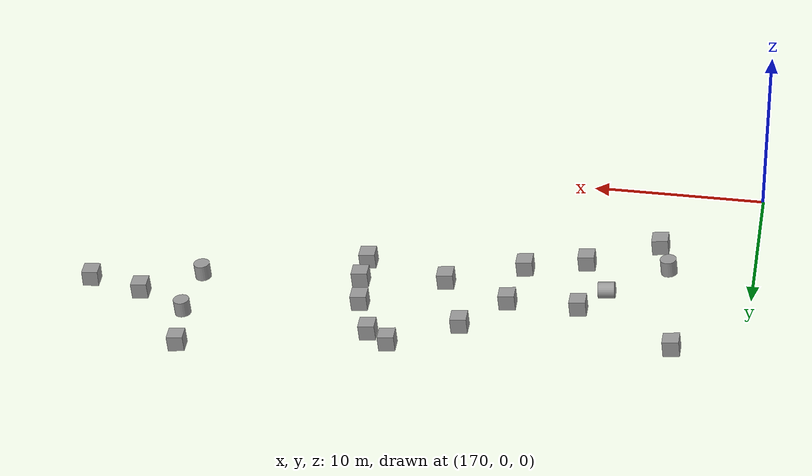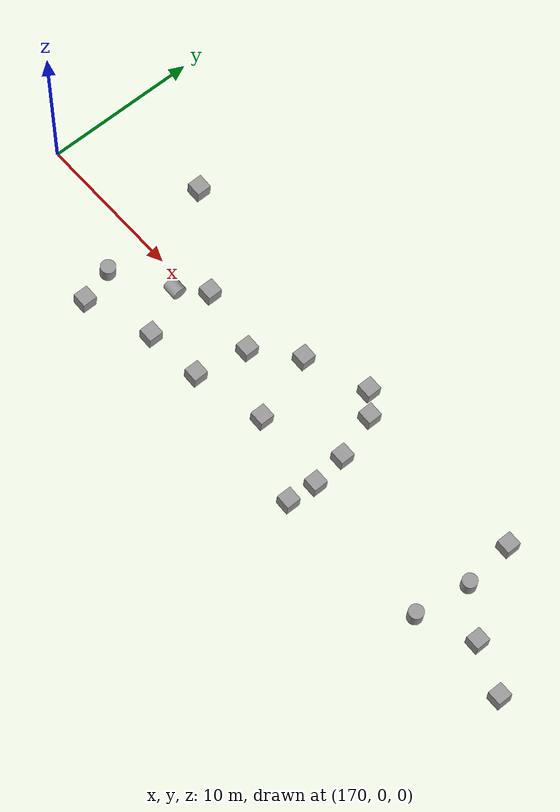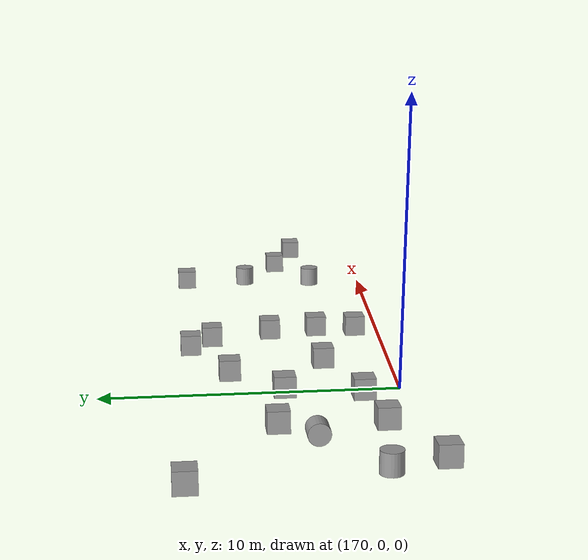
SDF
<sdf version="1.6">
 <world name="munkholmen">
  <physics name="default_physics" default="1" type="ode">
   <max_step_size>0.01</max_step_size>
   <real_time_factor>1</real_time_factor>
   <real_time_update_rate>100</real_time_update_rate>
   <ode>
    <solver>
     <type>quick</type>
     <iters>50</iters>
     <sor>1.2</sor>
     <use_dynamic_moi_rescaling>0</use_dynamic_moi_rescaling>
    </solver>
    <constraints>
     <cfm>0</cfm>
     <erp>0.2</erp>
     <contact_max_correcting_vel>100</contact_max_correcting_vel>
     <contact_surface_layer>0.001</contact_surface_layer>
    </constraints>
   </ode>
  </physics>
  <scene>
   <ambient>0.01 0.01 0.01 1</ambient>
   <sky><clouds><speed>12</speed></clouds></sky>
   <shadows>1</shadows>
   <background>0.7 0.7 0.7 1</background>
  </scene>
  <spherical_coordinates>
   <latitude_deg>63.452</latitude_deg>
   <longitude_deg>10.3845</longitude_deg>
   <surface_model>EARTH_WGS84</surface_model>
   <elevation>0</elevation>
   <heading_deg>0</heading_deg>
  </spherical_coordinates>
  <light name="sun_diffuse_1" type="directional">
   <pose>-200 -200 100 0 -0 0</pose>
   <diffuse>0.6 0.6 0.6 1</diffuse>
   <specular>0 0 0 1</specular>
   <direction>-0.3 -0.3 -1</direction>
  </light>
  <light name="sun_diffuse_2" type="directional">
   <pose>-100 50 200 0 -0 0</pose>
   <diffuse>0.6 0.6 0.6 1</diffuse>
   <specular>0 0 0 1</specular>
   <direction>-0.3 -0.3 -1</direction>
  </light>
  <light name="sun_diffuse_3" type="directional">
   <pose>-150 -130 50 0 -0 0</pose>
   <diffuse>0.6 0.6 0.6 1</diffuse>
   <specular>0.2 0.2 0.2 1</specular>
   <direction>0.5 0.5 -1</direction>
  </light>
  <plugin name="underwater_current_plugin" filename="libuuv_underwater_current_ros_plugin.so">
   <namespace>hydrodynamics</namespace>
   <constant_current>
    <topic>current_velocity</topic>
    <velocity><mean>0</mean><min>0</min><max>5</max><mu>0.0</mu><noiseAmp>0.0</noiseAmp></velocity>
    <horizontal_angle>
     <mean>0</mean>
     <min>-3.141592653589793238</min>
     <max>3.141592653589793238</max>
     <mu>0.0</mu>
     <noiseAmp>0.0</noiseAmp>
    </horizontal_angle>
    <vertical_angle>
     <mean>0</mean>
     <min>-3.141592653589793238</min>
     <max>3.141592653589793238</max>
     <mu>0.0</mu>
     <noiseAmp>0.0</noiseAmp>
    </vertical_angle>
   </constant_current>
  </plugin>
  <plugin name="sc_interface" filename="libuuv_sc_ros_interface_plugin.so"/>
  <gravity>0 0 -9.8</gravity>
  <magnetic_field>6e-06 2.3e-05 -4.2e-05</magnetic_field>
  <atmosphere type="adiabatic"/>
  <model name="unit_box_0_0">
   <pose>194.18 -0.074319 -7.90834 3.14133 1.45814 3.14159</pose>
   <link name="link">
    <inertial>
     <mass>1</mass>
     <inertia>
      <ixx>0.166667</ixx>
      <ixy>0</ixy>
      <ixz>0</ixz>
      <iyy>0.166667</iyy>
      <iyz>0</iyz>
      <izz>0.166667</izz>
     </inertia>
    </inertial>
    <collision name="collision"><geometry><box><size>1 1 1</size></box></geometry></collision>
    <visual name="visual">
     <geometry><box><size>1 1 1</size></box></geometry>
     <material>
      <script><name>Gazebo/Grey</name><uri>file://media/materials/scripts/gazebo.material</uri></script>
     </material>
    </visual>
   </link>
  </model>
  <model name="unit_box_0_1">
   <pose>188.887 0.194555 -7.31037 0.000278 0.112659 0.002473</pose>
   <link name="link">
    <inertial>
     <mass>1</mass>
     <inertia>
      <ixx>0.166667</ixx>
      <ixy>0</ixy>
      <ixz>0</ixz>
      <iyy>0.166667</iyy>
      <iyz>0</iyz>
      <izz>0.166667</izz>
     </inertia>
    </inertial>
    <collision name="collision"><geometry><box><size>1 1 1</size></box></geometry></collision>
    <visual name="visual">
     <geometry><box><size>1 1 1</size></box></geometry>
     <material>
      <script><name>Gazebo/Grey</name><uri>file://media/materials/scripts/gazebo.material</uri></script>
     </material>
    </visual>
   </link>
  </model>
  <model name="unit_box_0_2">
   <pose>194.013 -2.07693 -7.89036 -3.13432 1.45814 -3.14159</pose>
   <link name="link">
    <inertial>
     <mass>1</mass>
     <inertia>
      <ixx>0.166667</ixx>
      <ixy>0</ixy>
      <ixz>0</ixz>
      <iyy>0.166667</iyy>
      <iyz>0</iyz>
      <izz>0.166667</izz>
     </inertia>
    </inertial>
    <collision name="collision"><geometry><box><size>1 1 1</size></box></geometry></collision>
    <visual name="visual">
     <geometry><box><size>1 1 1</size></box></geometry>
     <material>
      <script><name>Gazebo/Grey</name><uri>file://media/materials/scripts/gazebo.material</uri></script>
     </material>
    </visual>
   </link>
  </model>
  <model name="unit_box_0_3">
   <pose>191.564 6.49335 -7.61333 -1.6e-05 0.11266 -0.000147</pose>
   <link name="link">
    <inertial>
     <mass>1</mass>
     <inertia>
      <ixx>0.166667</ixx>
      <ixy>0</ixy>
      <ixz>0</ixz>
      <iyy>0.166667</iyy>
      <iyz>0</iyz>
      <izz>0.166667</izz>
     </inertia>
    </inertial>
    <collision name="collision"><geometry><box><size>1 1 1</size></box></geometry></collision>
    <visual name="visual">
     <geometry><box><size>1 1 1</size></box></geometry>
     <material>
      <script><name>Gazebo/Grey</name><uri>file://media/materials/scripts/gazebo.material</uri></script>
     </material>
    </visual>
   </link>
  </model>
  <model name="unit_box_0_4">
   <pose>192.902 5.37704 -7.76471 -3.14083 1.45814 -3.14159</pose>
   <link name="link">
    <inertial>
     <mass>1</mass>
     <inertia>
      <ixx>0.166667</ixx>
      <ixy>0</ixy>
      <ixz>0</ixz>
      <iyy>0.166667</iyy>
      <iyz>0</iyz>
      <izz>0.166667</izz>
     </inertia>
    </inertial>
    <collision name="collision"><geometry><box><size>1 1 1</size></box></geometry></collision>
    <visual name="visual">
     <geometry><box><size>1 1 1</size></box></geometry>
     <material>
      <script><name>Gazebo/Grey</name><uri>file://media/materials/scripts/gazebo.material</uri></script>
     </material>
    </visual>
   </link>
  </model>
  <model name="unit_box_0_5">
   <pose>193.863 2.35191 -7.87251 -3.14042 1.45813 -3.14044</pose>
   <link name="link">
    <inertial>
     <mass>1</mass>
     <inertia>
      <ixx>0.166667</ixx>
      <ixy>0</ixy>
      <ixz>0</ixz>
      <iyy>0.166667</iyy>
      <iyz>0</iyz>
      <izz>0.166667</izz>
     </inertia>
    </inertial>
    <collision name="collision"><geometry><box><size>1 1 1</size></box></geometry></collision>
    <visual name="visual">
     <geometry><box><size>1 1 1</size></box></geometry>
     <material>
      <script><name>Gazebo/Grey</name><uri>file://media/materials/scripts/gazebo.material</uri></script>
     </material>
    </visual>
   </link>
  </model>
  <model name="unit_box_0_6">
   <pose>184.2 -1.10628 -6.78009 -3.14045 1.45814 -3.14159</pose>
   <link name="link">
    <inertial>
     <mass>1</mass>
     <inertia>
      <ixx>0.166667</ixx>
      <ixy>0</ixy>
      <ixz>0</ixz>
      <iyy>0.166667</iyy>
      <iyz>0</iyz>
      <izz>0.166667</izz>
     </inertia>
    </inertial>
    <collision name="collision"><geometry><box><size>1 1 1</size></box></geometry></collision>
    <visual name="visual">
     <geometry><box><size>1 1 1</size></box></geometry>
     <material>
      <script><name>Gazebo/Grey</name><uri>file://media/materials/scripts/gazebo.material</uri></script>
     </material>
    </visual>
   </link>
  </model>
  <model name="unit_box_0_7">
   <pose>187.449 4.77355 -7.1477 -3.14075 1.45814 -3.14159</pose>
   <link name="link">
    <inertial>
     <mass>1</mass>
     <inertia>
      <ixx>0.166667</ixx>
      <ixy>0</ixy>
      <ixz>0</ixz>
      <iyy>0.166667</iyy>
      <iyz>0</iyz>
      <izz>0.166667</izz>
     </inertia>
    </inertial>
    <collision name="collision"><geometry><box><size>1 1 1</size></box></geometry></collision>
    <visual name="visual">
     <geometry><box><size>1 1 1</size></box></geometry>
     <material>
      <script><name>Gazebo/Grey</name><uri>file://media/materials/scripts/gazebo.material</uri></script>
     </material>
    </visual>
   </link>
  </model>
  <model name="unit_box_0_8">
   <pose>184.856 2.43028 -6.85342 0.000149 0.11266 0.001327</pose>
   <link name="link">
    <inertial>
     <mass>1</mass>
     <inertia>
      <ixx>0.166667</ixx>
      <ixy>0</ixy>
      <ixz>0</ixz>
      <iyy>0.166667</iyy>
      <iyz>0</iyz>
      <izz>0.166667</izz>
     </inertia>
    </inertial>
    <collision name="collision"><geometry><box><size>1 1 1</size></box></geometry></collision>
    <visual name="visual">
     <geometry><box><size>1 1 1</size></box></geometry>
     <material>
      <script><name>Gazebo/Grey</name><uri>file://media/materials/scripts/gazebo.material</uri></script>
     </material>
    </visual>
   </link>
  </model>
  <model name="unit_box_0_9">
   <pose>180.474 -1.56134 -6.35853 0.000255 0.112659 0.002265</pose>
   <link name="link">
    <inertial>
     <mass>1</mass>
     <inertia>
      <ixx>0.166667</ixx>
      <ixy>0</ixy>
      <ixz>0</ixz>
      <iyy>0.166667</iyy>
      <iyz>0</iyz>
      <izz>0.166667</izz>
     </inertia>
    </inertial>
    <collision name="collision"><geometry><box><size>1 1 1</size></box></geometry></collision>
    <visual name="visual">
     <geometry><box><size>1 1 1</size></box></geometry>
     <material>
      <script><name>Gazebo/Grey</name><uri>file://media/materials/scripts/gazebo.material</uri></script>
     </material>
    </visual>
   </link>
  </model>
  <model name="unit_box_0_10">
   <pose>180.508 3.11373 -6.36241 -0.000346 0.112659 -0.003075</pose>
   <link name="link">
    <inertial>
     <mass>1</mass>
     <inertia>
      <ixx>0.166667</ixx>
      <ixy>0</ixy>
      <ixz>0</ixz>
      <iyy>0.166667</iyy>
      <iyz>0</iyz>
      <izz>0.166667</izz>
     </inertia>
    </inertial>
    <collision name="collision"><geometry><box><size>1 1 1</size></box></geometry></collision>
    <visual name="visual">
     <geometry><box><size>1 1 1</size></box></geometry>
     <material>
      <script><name>Gazebo/Grey</name><uri>file://media/materials/scripts/gazebo.material</uri></script>
     </material>
    </visual>
   </link>
  </model>
  <model name="unit_cylinder_0">
   <pose>178.961 1.5819 -6.18648 3.07061 1.45791 3.07102</pose>
   <link name="link">
    <inertial>
     <mass>1</mass>
     <inertia><ixx>0.145833</ixx><ixy>0</ixy><ixz>0</ixz><iyy>0.145833</iyy><iyz>0</iyz><izz>0.125</izz></inertia>
    </inertial>
    <collision name="collision">
     <geometry><cylinder><radius>0.5</radius><length>1</length></cylinder></geometry>
    </collision>
    <visual name="visual">
     <geometry><cylinder><radius>0.5</radius><length>1</length></cylinder></geometry>
     <material>
      <script><name>Gazebo/Grey</name><uri>file://media/materials/scripts/gazebo.material</uri></script>
     </material>
    </visual>
   </link>
  </model>
  <model name="unit_cylinder_1">
   <pose>175.461 -0.87269 -5.79122 5e-05 0.112827 -0.002649</pose>
   <link name="link">
    <inertial>
     <mass>1</mass>
     <inertia><ixx>0.145833</ixx><ixy>0</ixy><ixz>0</ixz><iyy>0.145833</iyy><iyz>0</iyz><izz>0.125</izz></inertia>
    </inertial>
    <collision name="collision">
     <geometry><cylinder><radius>0.5</radius><length>1</length></cylinder></geometry>
    </collision>
    <visual name="visual">
     <geometry><cylinder><radius>0.5</radius><length>1</length></cylinder></geometry>
     <material>
      <script><name>Gazebo/Grey</name><uri>file://media/materials/scripts/gazebo.material</uri></script>
     </material>
    </visual>
   </link>
  </model>
  <model name="unit_box_0_11">
   <pose>174.6 7.16549 -5.69403 0.000212 0.11266 0.001884</pose>
   <link name="link">
    <inertial>
     <mass>1</mass>
     <inertia>
      <ixx>0.166667</ixx>
      <ixy>0</ixy>
      <ixz>0</ixz>
      <iyy>0.166667</iyy>
      <iyz>0</iyz>
      <izz>0.166667</izz>
     </inertia>
    </inertial>
    <collision name="collision"><geometry><box><size>1 1 1</size></box></geometry></collision>
    <visual name="visual">
     <geometry><box><size>1 1 1</size></box></geometry>
     <material>
      <script><name>Gazebo/Grey</name><uri>file://media/materials/scripts/gazebo.material</uri></script>
     </material>
    </visual>
   </link>
  </model>
  <model name="unit_box_0_12">
   <pose>176.151 -3.23849 -5.8686 -3.14134 1.45814 3.14159</pose>
   <link name="link">
    <inertial>
     <mass>1</mass>
     <inertia>
      <ixx>0.166667</ixx>
      <ixy>0</ixy>
      <ixz>0</ixz>
      <iyy>0.166667</iyy>
      <iyz>0</iyz>
      <izz>0.166667</izz>
     </inertia>
    </inertial>
    <collision name="collision"><geometry><box><size>1 1 1</size></box></geometry></collision>
    <visual name="visual">
     <geometry><box><size>1 1 1</size></box></geometry>
     <material>
      <script><name>Gazebo/Grey</name><uri>file://media/materials/scripts/gazebo.material</uri></script>
     </material>
    </visual>
   </link>
  </model>
  <model name="unit_box_0_13">
   <pose>211.136 -0.403109 -9.76986 -3.7e-05 0.066175 -0.000565</pose>
   <link name="link">
    <inertial>
     <mass>1</mass>
     <inertia>
      <ixx>0.166667</ixx>
      <ixy>0</ixy>
      <ixz>0</ixz>
      <iyy>0.166667</iyy>
      <iyz>0</iyz>
      <izz>0.166667</izz>
     </inertia>
    </inertial>
    <collision name="collision"><geometry><box><size>1 1 1</size></box></geometry></collision>
    <visual name="visual">
     <geometry><box><size>1 1 1</size></box></geometry>
     <material>
      <script><name>Gazebo/Grey</name><uri>file://media/materials/scripts/gazebo.material</uri></script>
     </material>
    </visual>
   </link>
  </model>
  <model name="unit_box_0_14">
   <pose>207.755 0.898243 -9.44425 -1.2e-05 0.11266 -0.000106</pose>
   <link name="link">
    <inertial>
     <mass>1</mass>
     <inertia>
      <ixx>0.166667</ixx>
      <ixy>0</ixy>
      <ixz>0</ixz>
      <iyy>0.166667</iyy>
      <iyz>0</iyz>
      <izz>0.166667</izz>
     </inertia>
    </inertial>
    <collision name="collision"><geometry><box><size>1 1 1</size></box></geometry></collision>
    <visual name="visual">
     <geometry><box><size>1 1 1</size></box></geometry>
     <material>
      <script><name>Gazebo/Grey</name><uri>file://media/materials/scripts/gazebo.material</uri></script>
     </material>
    </visual>
   </link>
  </model>
  <model name="unit_cylinder_2">
   <pose>204.213 -0.877691 -9.04366 -0.006518 0.112717 -0.055172</pose>
   <link name="link">
    <inertial>
     <mass>1</mass>
     <inertia><ixx>0.145833</ixx><ixy>0</ixy><ixz>0</ixz><iyy>0.145833</iyy><iyz>0</iyz><izz>0.125</izz></inertia>
    </inertial>
    <collision name="collision">
     <geometry><cylinder><radius>0.5</radius><length>1</length></cylinder></geometry>
    </collision>
    <visual name="visual">
     <geometry><cylinder><radius>0.5</radius><length>1</length></cylinder></geometry>
     <material>
      <script><name>Gazebo/Grey</name><uri>file://media/materials/scripts/gazebo.material</uri></script>
     </material>
    </visual>
   </link>
  </model>
  <model name="unit_box_0_15">
   <pose>204.408 6.37913 -9.06649 3.14132 1.45814 -3.14159</pose>
   <link name="link">
    <inertial>
     <mass>1</mass>
     <inertia>
      <ixx>0.166667</ixx>
      <ixy>0</ixy>
      <ixz>0</ixz>
      <iyy>0.166667</iyy>
      <iyz>0</iyz>
      <izz>0.166667</izz>
     </inertia>
    </inertial>
    <collision name="collision"><geometry><box><size>1 1 1</size></box></geometry></collision>
    <visual name="visual">
     <geometry><box><size>1 1 1</size></box></geometry>
     <material>
      <script><name>Gazebo/Grey</name><uri>file://media/materials/scripts/gazebo.material</uri></script>
     </material>
    </visual>
   </link>
  </model>
  <model name="unit_cylinder_3">
   <pose>204.756 2.92636 -9.10466 0.000551 0.1126 -0.000101</pose>
   <link name="link">
    <inertial>
     <mass>1</mass>
     <inertia><ixx>0.145833</ixx><ixy>0</ixy><ixz>0</ixz><iyy>0.145833</iyy><iyz>0</iyz><izz>0.125</izz></inertia>
    </inertial>
    <collision name="collision">
     <geometry><cylinder><radius>0.5</radius><length>1</length></cylinder></geometry>
    </collision>
    <visual name="visual">
     <geometry><cylinder><radius>0.5</radius><length>1</length></cylinder></geometry>
     <material>
      <script><name>Gazebo/Grey</name><uri>file://media/materials/scripts/gazebo.material</uri></script>
     </material>
    </visual>
   </link>
  </model>
 </world>
</sdf>
